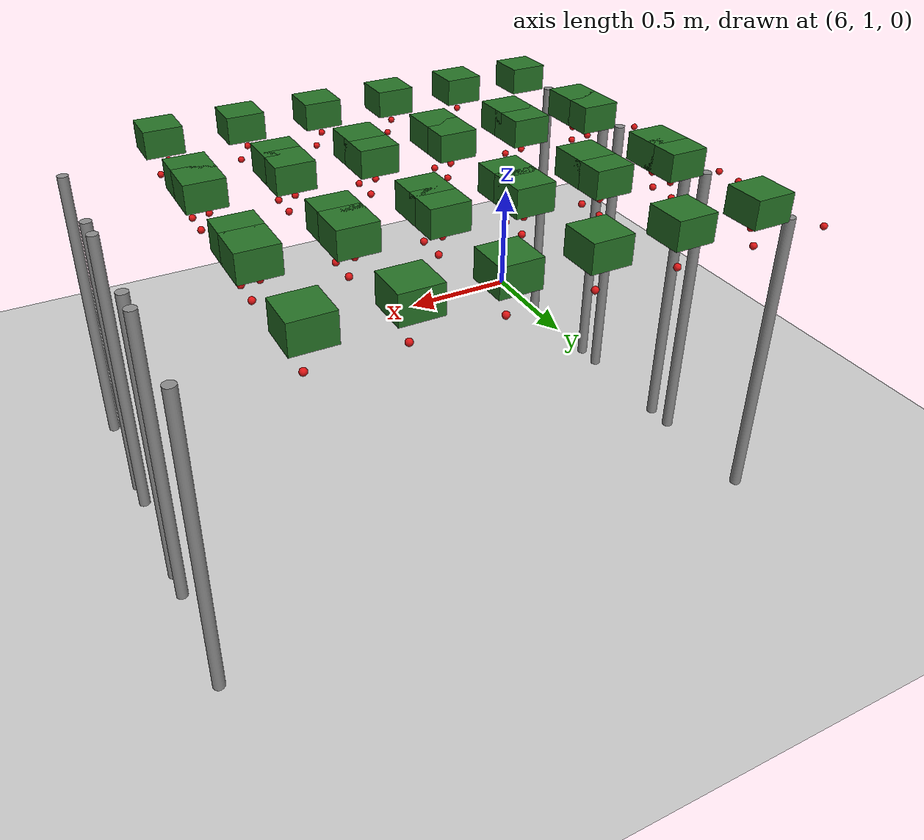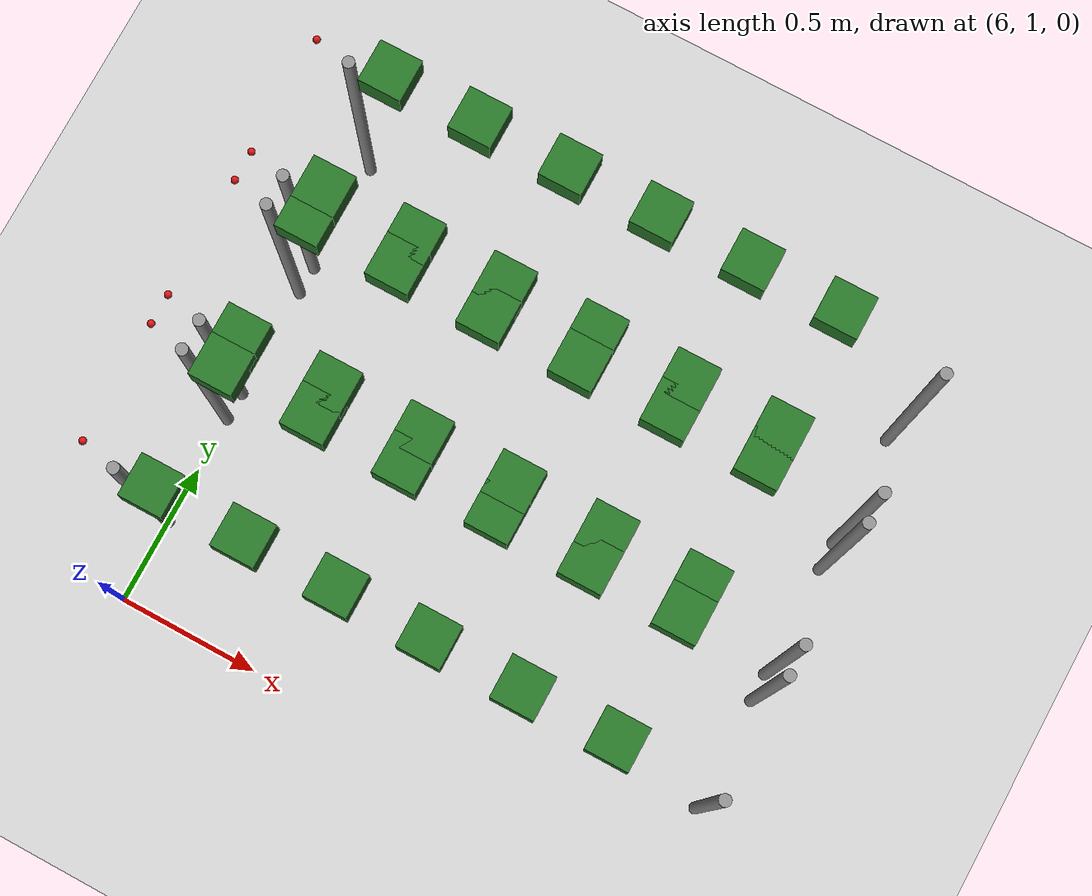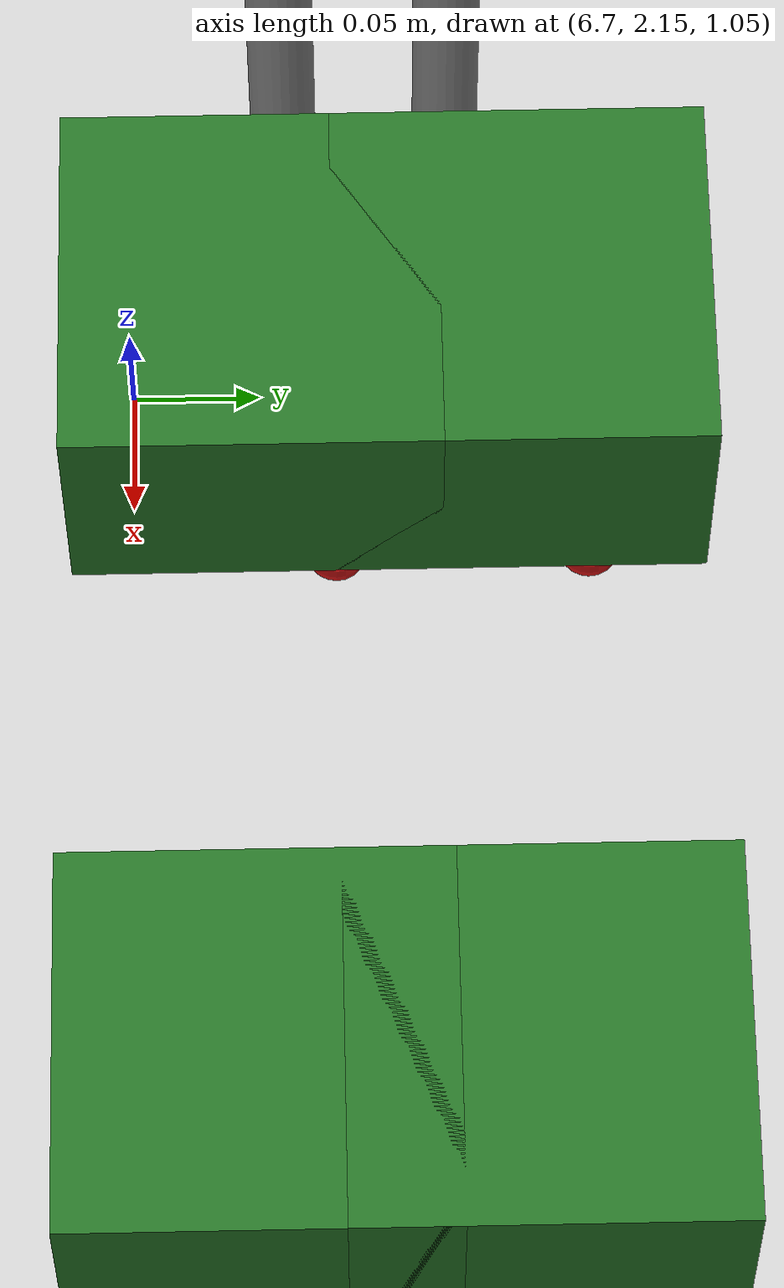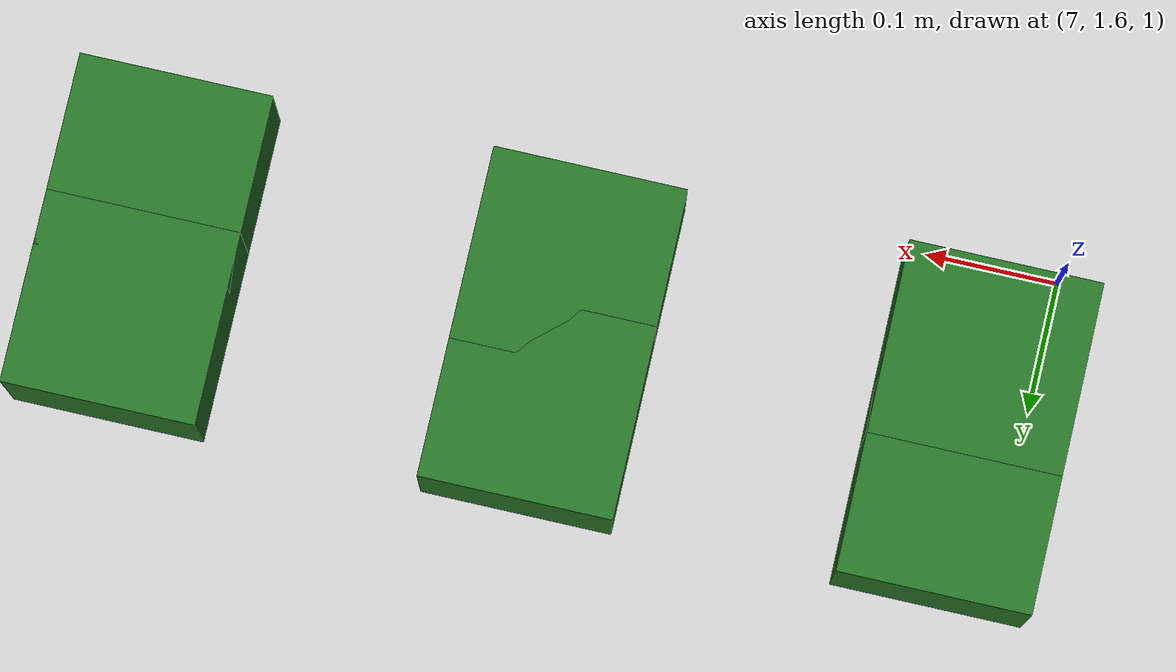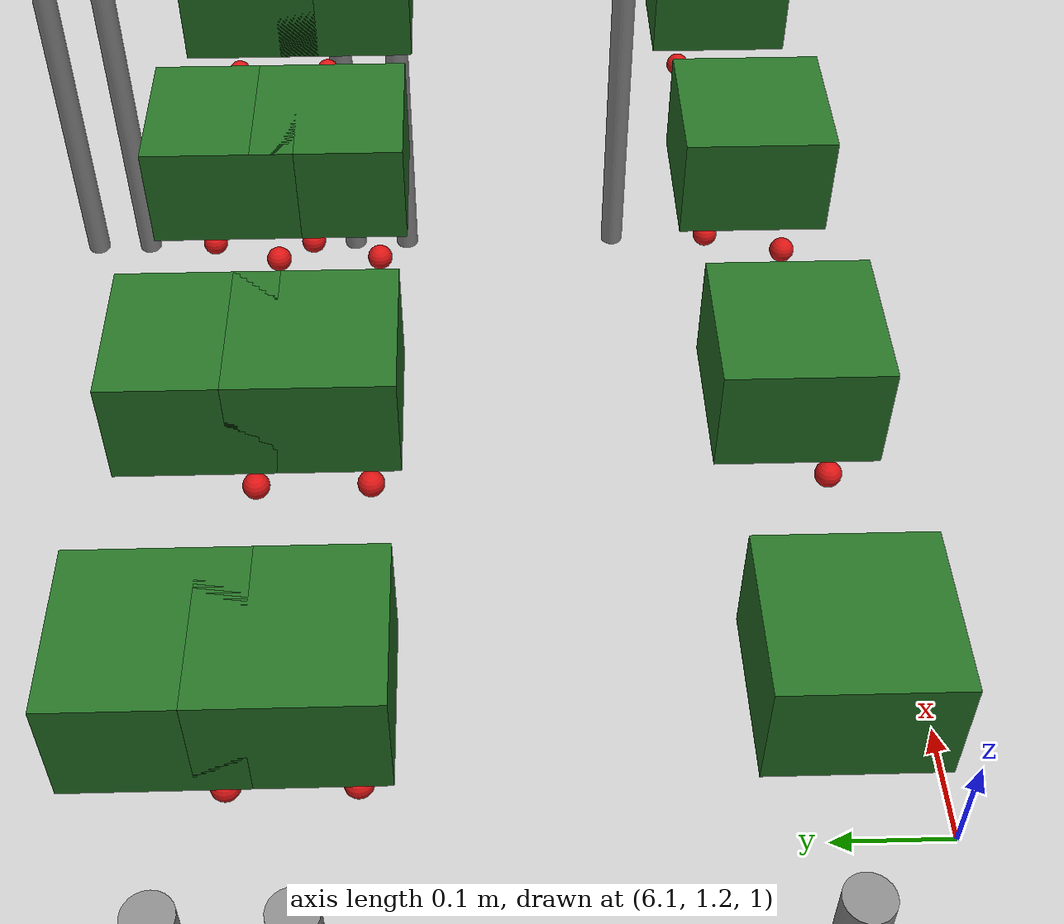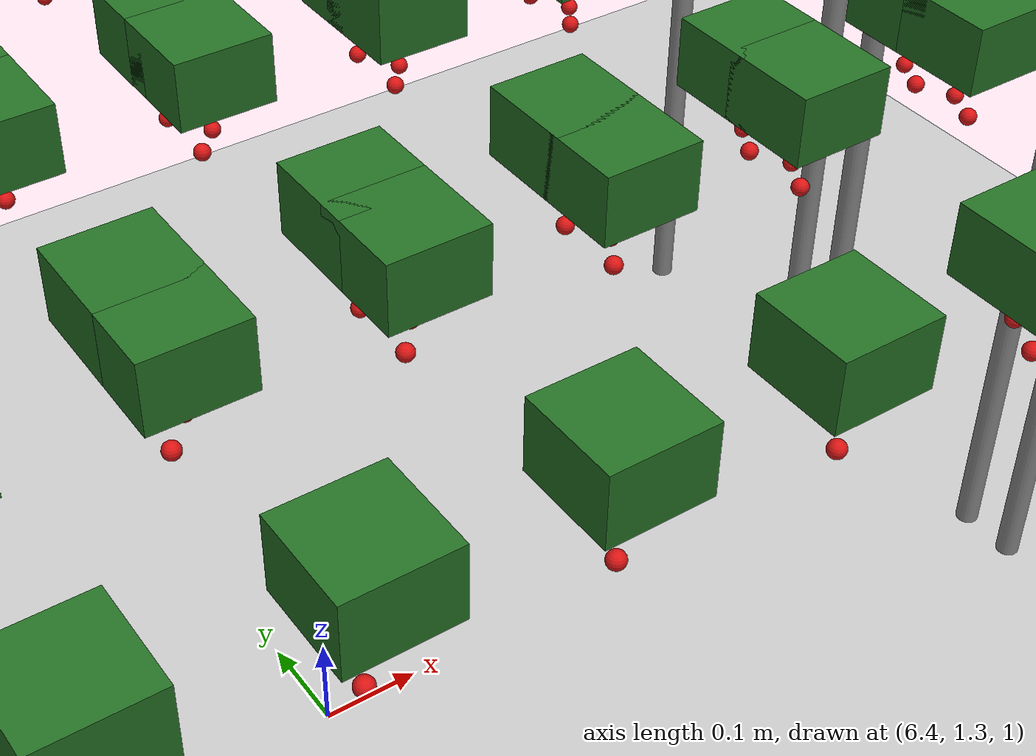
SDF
<sdf version="1.7">
 <world name="irish_polytunnel">
  <include><uri>model://sun</uri></include>
  <include><uri>model://ground_plane</uri></include>
  <model name="row3_L_post3">
   <static>true</static>
   <pose>6.000 1.700 0.550 0 0 0</pose>
   <link name="link">
    <collision name="collision">
     <geometry><cylinder><radius>0.02</radius><length>1.100</length></cylinder></geometry>
    </collision>
    <visual name="visual">
     <geometry><cylinder><radius>0.02</radius><length>1.100</length></cylinder></geometry>
     <material><ambient>0.5 0.5 0.5 1</ambient><diffuse>0.55 0.55 0.55 1</diffuse></material>
    </visual>
   </link>
  </model>
  <model name="row3_L_post4">
   <static>true</static>
   <pose>8.000 1.700 0.550 0 0 0</pose>
   <link name="link">
    <collision name="collision">
     <geometry><cylinder><radius>0.02</radius><length>1.100</length></cylinder></geometry>
    </collision>
    <visual name="visual">
     <geometry><cylinder><radius>0.02</radius><length>1.100</length></cylinder></geometry>
     <material><ambient>0.5 0.5 0.5 1</ambient><diffuse>0.55 0.55 0.55 1</diffuse></material>
    </visual>
   </link>
  </model>
  <model name="row3_L_plant19_berry_1">
   <static>true</static>
   <pose>5.870 1.730 1.050 0 0 0</pose>
   <link name="link">
    <visual name="visual">
     <geometry><sphere><radius>0.012</radius></sphere></geometry>
     <material><ambient>0.75 0.05 0.05 1</ambient><diffuse>0.85 0.08 0.08 1</diffuse></material>
    </visual>
   </link>
  </model>
  <model name="row3_L_plant20_foliage">
   <static>true</static>
   <pose>6.150 1.700 1.180 0 0 0</pose>
   <link name="link">
    <visual name="visual">
     <geometry><box><size>0.14 0.14 0.10</size></box></geometry>
     <material><ambient>0.10 0.35 0.10 1</ambient><diffuse>0.15 0.45 0.15 1</diffuse></material>
    </visual>
   </link>
  </model>
  <model name="row3_L_plant20_berry_0">
   <static>true</static>
   <pose>6.120 1.660 1.070 0 0 0</pose>
   <link name="link">
    <visual name="visual">
     <geometry><sphere><radius>0.012</radius></sphere></geometry>
     <material><ambient>0.75 0.05 0.05 1</ambient><diffuse>0.85 0.08 0.08 1</diffuse></material>
    </visual>
   </link>
  </model>
  <model name="row3_L_plant20_berry_1">
   <static>true</static>
   <pose>6.170 1.730 1.050 0 0 0</pose>
   <link name="link">
    <visual name="visual">
     <geometry><sphere><radius>0.012</radius></sphere></geometry>
     <material><ambient>0.75 0.05 0.05 1</ambient><diffuse>0.85 0.08 0.08 1</diffuse></material>
    </visual>
   </link>
  </model>
  <model name="row3_L_plant21_foliage">
   <static>true</static>
   <pose>6.450 1.700 1.180 0 0 0</pose>
   <link name="link">
    <visual name="visual">
     <geometry><box><size>0.14 0.14 0.10</size></box></geometry>
     <material><ambient>0.10 0.35 0.10 1</ambient><diffuse>0.15 0.45 0.15 1</diffuse></material>
    </visual>
   </link>
  </model>
  <model name="row3_L_plant21_berry_0">
   <static>true</static>
   <pose>6.420 1.660 1.070 0 0 0</pose>
   <link name="link">
    <visual name="visual">
     <geometry><sphere><radius>0.012</radius></sphere></geometry>
     <material><ambient>0.75 0.05 0.05 1</ambient><diffuse>0.85 0.08 0.08 1</diffuse></material>
    </visual>
   </link>
  </model>
  <model name="row3_L_plant21_berry_1">
   <static>true</static>
   <pose>6.470 1.730 1.050 0 0 0</pose>
   <link name="link">
    <visual name="visual">
     <geometry><sphere><radius>0.012</radius></sphere></geometry>
     <material><ambient>0.75 0.05 0.05 1</ambient><diffuse>0.85 0.08 0.08 1</diffuse></material>
    </visual>
   </link>
  </model>
  <model name="row3_L_plant22_foliage">
   <static>true</static>
   <pose>6.750 1.700 1.180 0 0 0</pose>
   <link name="link">
    <visual name="visual">
     <geometry><box><size>0.14 0.14 0.10</size></box></geometry>
     <material><ambient>0.10 0.35 0.10 1</ambient><diffuse>0.15 0.45 0.15 1</diffuse></material>
    </visual>
   </link>
  </model>
  <model name="row3_L_plant22_berry_0">
   <static>true</static>
   <pose>6.720 1.660 1.070 0 0 0</pose>
   <link name="link">
    <visual name="visual">
     <geometry><sphere><radius>0.012</radius></sphere></geometry>
     <material><ambient>0.75 0.05 0.05 1</ambient><diffuse>0.85 0.08 0.08 1</diffuse></material>
    </visual>
   </link>
  </model>
  <model name="row3_L_plant22_berry_1">
   <static>true</static>
   <pose>6.770 1.730 1.050 0 0 0</pose>
   <link name="link">
    <visual name="visual">
     <geometry><sphere><radius>0.012</radius></sphere></geometry>
     <material><ambient>0.75 0.05 0.05 1</ambient><diffuse>0.85 0.08 0.08 1</diffuse></material>
    </visual>
   </link>
  </model>
  <model name="row3_L_plant23_foliage">
   <static>true</static>
   <pose>7.050 1.700 1.180 0 0 0</pose>
   <link name="link">
    <visual name="visual">
     <geometry><box><size>0.14 0.14 0.10</size></box></geometry>
     <material><ambient>0.10 0.35 0.10 1</ambient><diffuse>0.15 0.45 0.15 1</diffuse></material>
    </visual>
   </link>
  </model>
  <model name="row3_L_plant23_berry_0">
   <static>true</static>
   <pose>7.020 1.660 1.070 0 0 0</pose>
   <link name="link">
    <visual name="visual">
     <geometry><sphere><radius>0.012</radius></sphere></geometry>
     <material><ambient>0.75 0.05 0.05 1</ambient><diffuse>0.85 0.08 0.08 1</diffuse></material>
    </visual>
   </link>
  </model>
  <model name="row3_L_plant23_berry_1">
   <static>true</static>
   <pose>7.070 1.730 1.050 0 0 0</pose>
   <link name="link">
    <visual name="visual">
     <geometry><sphere><radius>0.012</radius></sphere></geometry>
     <material><ambient>0.75 0.05 0.05 1</ambient><diffuse>0.85 0.08 0.08 1</diffuse></material>
    </visual>
   </link>
  </model>
  <model name="row3_L_plant24_foliage">
   <static>true</static>
   <pose>7.350 1.700 1.180 0 0 0</pose>
   <link name="link">
    <visual name="visual">
     <geometry><box><size>0.14 0.14 0.10</size></box></geometry>
     <material><ambient>0.10 0.35 0.10 1</ambient><diffuse>0.15 0.45 0.15 1</diffuse></material>
    </visual>
   </link>
  </model>
  <model name="row3_L_plant24_berry_0">
   <static>true</static>
   <pose>7.320 1.660 1.070 0 0 0</pose>
   <link name="link">
    <visual name="visual">
     <geometry><sphere><radius>0.012</radius></sphere></geometry>
     <material><ambient>0.75 0.05 0.05 1</ambient><diffuse>0.85 0.08 0.08 1</diffuse></material>
    </visual>
   </link>
  </model>
  <model name="row3_L_plant24_berry_1">
   <static>true</static>
   <pose>7.370 1.730 1.050 0 0 0</pose>
   <link name="link">
    <visual name="visual">
     <geometry><sphere><radius>0.012</radius></sphere></geometry>
     <material><ambient>0.75 0.05 0.05 1</ambient><diffuse>0.85 0.08 0.08 1</diffuse></material>
    </visual>
   </link>
  </model>
  <model name="row3_L_plant25_foliage">
   <static>true</static>
   <pose>7.650 1.700 1.180 0 0 0</pose>
   <link name="link">
    <visual name="visual">
     <geometry><box><size>0.14 0.14 0.10</size></box></geometry>
     <material><ambient>0.10 0.35 0.10 1</ambient><diffuse>0.15 0.45 0.15 1</diffuse></material>
    </visual>
   </link>
  </model>
  <model name="row3_L_plant25_berry_0">
   <static>true</static>
   <pose>7.620 1.660 1.070 0 0 0</pose>
   <link name="link">
    <visual name="visual">
     <geometry><sphere><radius>0.012</radius></sphere></geometry>
     <material><ambient>0.75 0.05 0.05 1</ambient><diffuse>0.85 0.08 0.08 1</diffuse></material>
    </visual>
   </link>
  </model>
  <model name="row3_L_plant25_berry_1">
   <static>true</static>
   <pose>7.670 1.730 1.050 0 0 0</pose>
   <link name="link">
    <visual name="visual">
     <geometry><sphere><radius>0.012</radius></sphere></geometry>
     <material><ambient>0.75 0.05 0.05 1</ambient><diffuse>0.85 0.08 0.08 1</diffuse></material>
    </visual>
   </link>
  </model>
  <model name="row3_R_post3">
   <static>true</static>
   <pose>6.000 1.300 0.550 0 0 0</pose>
   <link name="link">
    <collision name="collision">
     <geometry><cylinder><radius>0.02</radius><length>1.100</length></cylinder></geometry>
    </collision>
    <visual name="visual">
     <geometry><cylinder><radius>0.02</radius><length>1.100</length></cylinder></geometry>
     <material><ambient>0.5 0.5 0.5 1</ambient><diffuse>0.55 0.55 0.55 1</diffuse></material>
    </visual>
   </link>
  </model>
  <model name="row3_R_post4">
   <static>true</static>
   <pose>8.000 1.300 0.550 0 0 0</pose>
   <link name="link">
    <collision name="collision">
     <geometry><cylinder><radius>0.02</radius><length>1.100</length></cylinder></geometry>
    </collision>
    <visual name="visual">
     <geometry><cylinder><radius>0.02</radius><length>1.100</length></cylinder></geometry>
     <material><ambient>0.5 0.5 0.5 1</ambient><diffuse>0.55 0.55 0.55 1</diffuse></material>
    </visual>
   </link>
  </model>
  <model name="row3_R_plant19_berry_1">
   <static>true</static>
   <pose>5.870 1.330 1.050 0 0 0</pose>
   <link name="link">
    <visual name="visual">
     <geometry><sphere><radius>0.012</radius></sphere></geometry>
     <material><ambient>0.75 0.05 0.05 1</ambient><diffuse>0.85 0.08 0.08 1</diffuse></material>
    </visual>
   </link>
  </model>
  <model name="row3_R_plant20_foliage">
   <static>true</static>
   <pose>6.150 1.300 1.180 0 0 0</pose>
   <link name="link">
    <visual name="visual">
     <geometry><box><size>0.14 0.14 0.10</size></box></geometry>
     <material><ambient>0.10 0.35 0.10 1</ambient><diffuse>0.15 0.45 0.15 1</diffuse></material>
    </visual>
   </link>
  </model>
  <model name="row3_R_plant20_berry_1">
   <static>true</static>
   <pose>6.170 1.330 1.050 0 0 0</pose>
   <link name="link">
    <visual name="visual">
     <geometry><sphere><radius>0.012</radius></sphere></geometry>
     <material><ambient>0.75 0.05 0.05 1</ambient><diffuse>0.85 0.08 0.08 1</diffuse></material>
    </visual>
   </link>
  </model>
  <model name="row3_R_plant21_foliage">
   <static>true</static>
   <pose>6.450 1.300 1.180 0 0 0</pose>
   <link name="link">
    <visual name="visual">
     <geometry><box><size>0.14 0.14 0.10</size></box></geometry>
     <material><ambient>0.10 0.35 0.10 1</ambient><diffuse>0.15 0.45 0.15 1</diffuse></material>
    </visual>
   </link>
  </model>
  <model name="row3_R_plant21_berry_0">
   <static>true</static>
   <pose>6.420 1.260 1.070 0 0 0</pose>
   <link name="link">
    <visual name="visual">
     <geometry><sphere><radius>0.012</radius></sphere></geometry>
     <material><ambient>0.75 0.05 0.05 1</ambient><diffuse>0.85 0.08 0.08 1</diffuse></material>
    </visual>
   </link>
  </model>
  <model name="row3_R_plant21_berry_1">
   <static>true</static>
   <pose>6.470 1.330 1.050 0 0 0</pose>
   <link name="link">
    <visual name="visual">
     <geometry><sphere><radius>0.012</radius></sphere></geometry>
     <material><ambient>0.75 0.05 0.05 1</ambient><diffuse>0.85 0.08 0.08 1</diffuse></material>
    </visual>
   </link>
  </model>
  <model name="row3_R_plant22_foliage">
   <static>true</static>
   <pose>6.750 1.300 1.180 0 0 0</pose>
   <link name="link">
    <visual name="visual">
     <geometry><box><size>0.14 0.14 0.10</size></box></geometry>
     <material><ambient>0.10 0.35 0.10 1</ambient><diffuse>0.15 0.45 0.15 1</diffuse></material>
    </visual>
   </link>
  </model>
  <model name="row3_R_plant22_berry_0">
   <static>true</static>
   <pose>6.720 1.260 1.070 0 0 0</pose>
   <link name="link">
    <visual name="visual">
     <geometry><sphere><radius>0.012</radius></sphere></geometry>
     <material><ambient>0.75 0.05 0.05 1</ambient><diffuse>0.85 0.08 0.08 1</diffuse></material>
    </visual>
   </link>
  </model>
  <model name="row3_R_plant22_berry_1">
   <static>true</static>
   <pose>6.770 1.330 1.050 0 0 0</pose>
   <link name="link">
    <visual name="visual">
     <geometry><sphere><radius>0.012</radius></sphere></geometry>
     <material><ambient>0.75 0.05 0.05 1</ambient><diffuse>0.85 0.08 0.08 1</diffuse></material>
    </visual>
   </link>
  </model>
  <model name="row3_R_plant23_foliage">
   <static>true</static>
   <pose>7.050 1.300 1.180 0 0 0</pose>
   <link name="link">
    <visual name="visual">
     <geometry><box><size>0.14 0.14 0.10</size></box></geometry>
     <material><ambient>0.10 0.35 0.10 1</ambient><diffuse>0.15 0.45 0.15 1</diffuse></material>
    </visual>
   </link>
  </model>
  <model name="row3_R_plant23_berry_0">
   <static>true</static>
   <pose>7.020 1.260 1.070 0 0 0</pose>
   <link name="link">
    <visual name="visual">
     <geometry><sphere><radius>0.012</radius></sphere></geometry>
     <material><ambient>0.75 0.05 0.05 1</ambient><diffuse>0.85 0.08 0.08 1</diffuse></material>
    </visual>
   </link>
  </model>
  <model name="row3_R_plant23_berry_1">
   <static>true</static>
   <pose>7.070 1.330 1.050 0 0 0</pose>
   <link name="link">
    <visual name="visual">
     <geometry><sphere><radius>0.012</radius></sphere></geometry>
     <material><ambient>0.75 0.05 0.05 1</ambient><diffuse>0.85 0.08 0.08 1</diffuse></material>
    </visual>
   </link>
  </model>
  <model name="row3_R_plant24_foliage">
   <static>true</static>
   <pose>7.350 1.300 1.180 0 0 0</pose>
   <link name="link">
    <visual name="visual">
     <geometry><box><size>0.14 0.14 0.10</size></box></geometry>
     <material><ambient>0.10 0.35 0.10 1</ambient><diffuse>0.15 0.45 0.15 1</diffuse></material>
    </visual>
   </link>
  </model>
  <model name="row3_R_plant24_berry_0">
   <static>true</static>
   <pose>7.320 1.260 1.070 0 0 0</pose>
   <link name="link">
    <visual name="visual">
     <geometry><sphere><radius>0.012</radius></sphere></geometry>
     <material><ambient>0.75 0.05 0.05 1</ambient><diffuse>0.85 0.08 0.08 1</diffuse></material>
    </visual>
   </link>
  </model>
  <model name="row3_R_plant24_berry_1">
   <static>true</static>
   <pose>7.370 1.330 1.050 0 0 0</pose>
   <link name="link">
    <visual name="visual">
     <geometry><sphere><radius>0.012</radius></sphere></geometry>
     <material><ambient>0.75 0.05 0.05 1</ambient><diffuse>0.85 0.08 0.08 1</diffuse></material>
    </visual>
   </link>
  </model>
  <model name="row3_R_plant25_foliage">
   <static>true</static>
   <pose>7.650 1.300 1.180 0 0 0</pose>
   <link name="link">
    <visual name="visual">
     <geometry><box><size>0.14 0.14 0.10</size></box></geometry>
     <material><ambient>0.10 0.35 0.10 1</ambient><diffuse>0.15 0.45 0.15 1</diffuse></material>
    </visual>
   </link>
  </model>
  <model name="row3_R_plant25_berry_0">
   <static>true</static>
   <pose>7.620 1.260 1.070 0 0 0</pose>
   <link name="link">
    <visual name="visual">
     <geometry><sphere><radius>0.012</radius></sphere></geometry>
     <material><ambient>0.75 0.05 0.05 1</ambient><diffuse>0.85 0.08 0.08 1</diffuse></material>
    </visual>
   </link>
  </model>
  <model name="row3_R_plant25_berry_1">
   <static>true</static>
   <pose>7.670 1.330 1.050 0 0 0</pose>
   <link name="link">
    <visual name="visual">
     <geometry><sphere><radius>0.012</radius></sphere></geometry>
     <material><ambient>0.75 0.05 0.05 1</ambient><diffuse>0.85 0.08 0.08 1</diffuse></material>
    </visual>
   </link>
  </model>
  <model name="row4_L_post3">
   <static>true</static>
   <pose>6.000 2.200 0.550 0 0 0</pose>
   <link name="link">
    <collision name="collision">
     <geometry><cylinder><radius>0.02</radius><length>1.100</length></cylinder></geometry>
    </collision>
    <visual name="visual">
     <geometry><cylinder><radius>0.02</radius><length>1.100</length></cylinder></geometry>
     <material><ambient>0.5 0.5 0.5 1</ambient><diffuse>0.55 0.55 0.55 1</diffuse></material>
    </visual>
   </link>
  </model>
  <model name="row4_L_post4">
   <static>true</static>
   <pose>8.000 2.200 0.550 0 0 0</pose>
   <link name="link">
    <collision name="collision">
     <geometry><cylinder><radius>0.02</radius><length>1.100</length></cylinder></geometry>
    </collision>
    <visual name="visual">
     <geometry><cylinder><radius>0.02</radius><length>1.100</length></cylinder></geometry>
     <material><ambient>0.5 0.5 0.5 1</ambient><diffuse>0.55 0.55 0.55 1</diffuse></material>
    </visual>
   </link>
  </model>
  <model name="row4_L_plant19_berry_1">
   <static>true</static>
   <pose>5.870 2.230 1.050 0 0 0</pose>
   <link name="link">
    <visual name="visual">
     <geometry><sphere><radius>0.012</radius></sphere></geometry>
     <material><ambient>0.75 0.05 0.05 1</ambient><diffuse>0.85 0.08 0.08 1</diffuse></material>
    </visual>
   </link>
  </model>
  <model name="row4_L_plant20_foliage">
   <static>true</static>
   <pose>6.150 2.200 1.180 0 0 0</pose>
   <link name="link">
    <visual name="visual">
     <geometry><box><size>0.14 0.14 0.10</size></box></geometry>
     <material><ambient>0.10 0.35 0.10 1</ambient><diffuse>0.15 0.45 0.15 1</diffuse></material>
    </visual>
   </link>
  </model>
  <model name="row4_L_plant20_berry_0">
   <static>true</static>
   <pose>6.120 2.160 1.070 0 0 0</pose>
   <link name="link">
    <visual name="visual">
     <geometry><sphere><radius>0.012</radius></sphere></geometry>
     <material><ambient>0.75 0.05 0.05 1</ambient><diffuse>0.85 0.08 0.08 1</diffuse></material>
    </visual>
   </link>
  </model>
  <model name="row4_L_plant20_berry_1">
   <static>true</static>
   <pose>6.170 2.230 1.050 0 0 0</pose>
   <link name="link">
    <visual name="visual">
     <geometry><sphere><radius>0.012</radius></sphere></geometry>
     <material><ambient>0.75 0.05 0.05 1</ambient><diffuse>0.85 0.08 0.08 1</diffuse></material>
    </visual>
   </link>
  </model>
  <model name="row4_L_plant21_foliage">
   <static>true</static>
   <pose>6.450 2.200 1.180 0 0 0</pose>
   <link name="link">
    <visual name="visual">
     <geometry><box><size>0.14 0.14 0.10</size></box></geometry>
     <material><ambient>0.10 0.35 0.10 1</ambient><diffuse>0.15 0.45 0.15 1</diffuse></material>
    </visual>
   </link>
  </model>
  <model name="row4_L_plant21_berry_0">
   <static>true</static>
   <pose>6.420 2.160 1.070 0 0 0</pose>
   <link name="link">
    <visual name="visual">
     <geometry><sphere><radius>0.012</radius></sphere></geometry>
     <material><ambient>0.75 0.05 0.05 1</ambient><diffuse>0.85 0.08 0.08 1</diffuse></material>
    </visual>
   </link>
  </model>
  <model name="row4_L_plant21_berry_1">
   <static>true</static>
   <pose>6.470 2.230 1.050 0 0 0</pose>
   <link name="link">
    <visual name="visual">
     <geometry><sphere><radius>0.012</radius></sphere></geometry>
     <material><ambient>0.75 0.05 0.05 1</ambient><diffuse>0.85 0.08 0.08 1</diffuse></material>
    </visual>
   </link>
  </model>
  <model name="row4_L_plant22_foliage">
   <static>true</static>
   <pose>6.750 2.200 1.180 0 0 0</pose>
   <link name="link">
    <visual name="visual">
     <geometry><box><size>0.14 0.14 0.10</size></box></geometry>
     <material><ambient>0.10 0.35 0.10 1</ambient><diffuse>0.15 0.45 0.15 1</diffuse></material>
    </visual>
   </link>
  </model>
  <model name="row4_L_plant22_berry_0">
   <static>true</static>
   <pose>6.720 2.160 1.070 0 0 0</pose>
   <link name="link">
    <visual name="visual">
     <geometry><sphere><radius>0.012</radius></sphere></geometry>
     <material><ambient>0.75 0.05 0.05 1</ambient><diffuse>0.85 0.08 0.08 1</diffuse></material>
    </visual>
   </link>
  </model>
  <model name="row4_L_plant22_berry_1">
   <static>true</static>
   <pose>6.770 2.230 1.050 0 0 0</pose>
   <link name="link">
    <visual name="visual">
     <geometry><sphere><radius>0.012</radius></sphere></geometry>
     <material><ambient>0.75 0.05 0.05 1</ambient><diffuse>0.85 0.08 0.08 1</diffuse></material>
    </visual>
   </link>
  </model>
  <model name="row4_L_plant23_foliage">
   <static>true</static>
   <pose>7.050 2.200 1.180 0 0 0</pose>
   <link name="link">
    <visual name="visual">
     <geometry><box><size>0.14 0.14 0.10</size></box></geometry>
     <material><ambient>0.10 0.35 0.10 1</ambient><diffuse>0.15 0.45 0.15 1</diffuse></material>
    </visual>
   </link>
  </model>
  <model name="row4_L_plant23_berry_0">
   <static>true</static>
   <pose>7.020 2.160 1.070 0 0 0</pose>
   <link name="link">
    <visual name="visual">
     <geometry><sphere><radius>0.012</radius></sphere></geometry>
     <material><ambient>0.75 0.05 0.05 1</ambient><diffuse>0.85 0.08 0.08 1</diffuse></material>
    </visual>
   </link>
  </model>
  <model name="row4_L_plant23_berry_1">
   <static>true</static>
   <pose>7.070 2.230 1.050 0 0 0</pose>
   <link name="link">
    <visual name="visual">
     <geometry><sphere><radius>0.012</radius></sphere></geometry>
     <material><ambient>0.75 0.05 0.05 1</ambient><diffuse>0.85 0.08 0.08 1</diffuse></material>
    </visual>
   </link>
  </model>
  <model name="row4_L_plant24_foliage">
   <static>true</static>
   <pose>7.350 2.200 1.180 0 0 0</pose>
   <link name="link">
    <visual name="visual">
     <geometry><box><size>0.14 0.14 0.10</size></box></geometry>
     <material><ambient>0.10 0.35 0.10 1</ambient><diffuse>0.15 0.45 0.15 1</diffuse></material>
    </visual>
   </link>
  </model>
  <model name="row4_L_plant24_berry_0">
   <static>true</static>
   <pose>7.320 2.160 1.070 0 0 0</pose>
   <link name="link">
    <visual name="visual">
     <geometry><sphere><radius>0.012</radius></sphere></geometry>
     <material><ambient>0.75 0.05 0.05 1</ambient><diffuse>0.85 0.08 0.08 1</diffuse></material>
    </visual>
   </link>
  </model>
  <model name="row4_L_plant24_berry_1">
   <static>true</static>
   <pose>7.370 2.230 1.050 0 0 0</pose>
   <link name="link">
    <visual name="visual">
     <geometry><sphere><radius>0.012</radius></sphere></geometry>
     <material><ambient>0.75 0.05 0.05 1</ambient><diffuse>0.85 0.08 0.08 1</diffuse></material>
    </visual>
   </link>
  </model>
  <model name="row4_L_plant25_foliage">
   <static>true</static>
   <pose>7.650 2.200 1.180 0 0 0</pose>
   <link name="link">
    <visual name="visual">
     <geometry><box><size>0.14 0.14 0.10</size></box></geometry>
     <material><ambient>0.10 0.35 0.10 1</ambient><diffuse>0.15 0.45 0.15 1</diffuse></material>
    </visual>
   </link>
  </model>
  <model name="row4_L_plant25_berry_0">
   <static>true</static>
   <pose>7.620 2.160 1.070 0 0 0</pose>
   <link name="link">
    <visual name="visual">
     <geometry><sphere><radius>0.012</radius></sphere></geometry>
     <material><ambient>0.75 0.05 0.05 1</ambient><diffuse>0.85 0.08 0.08 1</diffuse></material>
    </visual>
   </link>
  </model>
  <model name="row4_L_plant25_berry_1">
   <static>true</static>
   <pose>7.670 2.230 1.050 0 0 0</pose>
   <link name="link">
    <visual name="visual">
     <geometry><sphere><radius>0.012</radius></sphere></geometry>
     <material><ambient>0.75 0.05 0.05 1</ambient><diffuse>0.85 0.08 0.08 1</diffuse></material>
    </visual>
   </link>
  </model>
  <model name="row4_R_post3">
   <static>true</static>
   <pose>6.000 1.800 0.550 0 0 0</pose>
   <link name="link">
    <collision name="collision">
     <geometry><cylinder><radius>0.02</radius><length>1.100</length></cylinder></geometry>
    </collision>
    <visual name="visual">
     <geometry><cylinder><radius>0.02</radius><length>1.100</length></cylinder></geometry>
     <material><ambient>0.5 0.5 0.5 1</ambient><diffuse>0.55 0.55 0.55 1</diffuse></material>
    </visual>
   </link>
  </model>
  <model name="row4_R_post4">
   <static>true</static>
   <pose>8.000 1.800 0.550 0 0 0</pose>
   <link name="link">
    <collision name="collision">
     <geometry><cylinder><radius>0.02</radius><length>1.100</length></cylinder></geometry>
    </collision>
    <visual name="visual">
     <geometry><cylinder><radius>0.02</radius><length>1.100</length></cylinder></geometry>
     <material><ambient>0.5 0.5 0.5 1</ambient><diffuse>0.55 0.55 0.55 1</diffuse></material>
    </visual>
   </link>
  </model>
  <model name="row4_R_plant19_berry_1">
   <static>true</static>
   <pose>5.870 1.830 1.050 0 0 0</pose>
   <link name="link">
    <visual name="visual">
     <geometry><sphere><radius>0.012</radius></sphere></geometry>
     <material><ambient>0.75 0.05 0.05 1</ambient><diffuse>0.85 0.08 0.08 1</diffuse></material>
    </visual>
   </link>
  </model>
  <model name="row4_R_plant20_foliage">
   <static>true</static>
   <pose>6.150 1.800 1.180 0 0 0</pose>
   <link name="link">
    <visual name="visual">
     <geometry><box><size>0.14 0.14 0.10</size></box></geometry>
     <material><ambient>0.10 0.35 0.10 1</ambient><diffuse>0.15 0.45 0.15 1</diffuse></material>
    </visual>
   </link>
  </model>
  <model name="row4_R_plant20_berry_0">
   <static>true</static>
   <pose>6.120 1.760 1.070 0 0 0</pose>
   <link name="link">
    <visual name="visual">
     <geometry><sphere><radius>0.012</radius></sphere></geometry>
     <material><ambient>0.75 0.05 0.05 1</ambient><diffuse>0.85 0.08 0.08 1</diffuse></material>
    </visual>
   </link>
  </model>
  <model name="row4_R_plant20_berry_1">
   <static>true</static>
   <pose>6.170 1.830 1.050 0 0 0</pose>
   <link name="link">
    <visual name="visual">
     <geometry><sphere><radius>0.012</radius></sphere></geometry>
     <material><ambient>0.75 0.05 0.05 1</ambient><diffuse>0.85 0.08 0.08 1</diffuse></material>
    </visual>
   </link>
  </model>
  <model name="row4_R_plant21_foliage">
   <static>true</static>
   <pose>6.450 1.800 1.180 0 0 0</pose>
   <link name="link">
    <visual name="visual">
     <geometry><box><size>0.14 0.14 0.10</size></box></geometry>
     <material><ambient>0.10 0.35 0.10 1</ambient><diffuse>0.15 0.45 0.15 1</diffuse></material>
    </visual>
   </link>
  </model>
  <model name="row4_R_plant21_berry_0">
   <static>true</static>
   <pose>6.420 1.760 1.070 0 0 0</pose>
   <link name="link">
    <visual name="visual">
     <geometry><sphere><radius>0.012</radius></sphere></geometry>
     <material><ambient>0.75 0.05 0.05 1</ambient><diffuse>0.85 0.08 0.08 1</diffuse></material>
    </visual>
   </link>
  </model>
  <model name="row4_R_plant21_berry_1">
   <static>true</static>
   <pose>6.470 1.830 1.050 0 0 0</pose>
   <link name="link">
    <visual name="visual">
     <geometry><sphere><radius>0.012</radius></sphere></geometry>
     <material><ambient>0.75 0.05 0.05 1</ambient><diffuse>0.85 0.08 0.08 1</diffuse></material>
    </visual>
   </link>
  </model>
  <model name="row4_R_plant22_foliage">
   <static>true</static>
   <pose>6.750 1.800 1.180 0 0 0</pose>
   <link name="link">
    <visual name="visual">
     <geometry><box><size>0.14 0.14 0.10</size></box></geometry>
     <material><ambient>0.10 0.35 0.10 1</ambient><diffuse>0.15 0.45 0.15 1</diffuse></material>
    </visual>
   </link>
  </model>
  <model name="row4_R_plant22_berry_0">
   <static>true</static>
   <pose>6.720 1.760 1.070 0 0 0</pose>
   <link name="link">
    <visual name="visual">
     <geometry><sphere><radius>0.012</radius></sphere></geometry>
     <material><ambient>0.75 0.05 0.05 1</ambient><diffuse>0.85 0.08 0.08 1</diffuse></material>
    </visual>
   </link>
  </model>
  <model name="row4_R_plant22_berry_1">
   <static>true</static>
   <pose>6.770 1.830 1.050 0 0 0</pose>
   <link name="link">
    <visual name="visual">
     <geometry><sphere><radius>0.012</radius></sphere></geometry>
     <material><ambient>0.75 0.05 0.05 1</ambient><diffuse>0.85 0.08 0.08 1</diffuse></material>
    </visual>
   </link>
  </model>
  <model name="row4_R_plant23_foliage">
   <static>true</static>
   <pose>7.050 1.800 1.180 0 0 0</pose>
   <link name="link">
    <visual name="visual">
     <geometry><box><size>0.14 0.14 0.10</size></box></geometry>
     <material><ambient>0.10 0.35 0.10 1</ambient><diffuse>0.15 0.45 0.15 1</diffuse></material>
    </visual>
   </link>
  </model>
  <model name="row4_R_plant23_berry_0">
   <static>true</static>
   <pose>7.020 1.760 1.070 0 0 0</pose>
   <link name="link">
    <visual name="visual">
     <geometry><sphere><radius>0.012</radius></sphere></geometry>
     <material><ambient>0.75 0.05 0.05 1</ambient><diffuse>0.85 0.08 0.08 1</diffuse></material>
    </visual>
   </link>
  </model>
  <model name="row4_R_plant23_berry_1">
   <static>true</static>
   <pose>7.070 1.830 1.050 0 0 0</pose>
   <link name="link">
    <visual name="visual">
     <geometry><sphere><radius>0.012</radius></sphere></geometry>
     <material><ambient>0.75 0.05 0.05 1</ambient><diffuse>0.85 0.08 0.08 1</diffuse></material>
    </visual>
   </link>
  </model>
  <model name="row4_R_plant24_foliage">
   <static>true</static>
   <pose>7.350 1.800 1.180 0 0 0</pose>
   <link name="link">
    <visual name="visual">
     <geometry><box><size>0.14 0.14 0.10</size></box></geometry>
     <material><ambient>0.10 0.35 0.10 1</ambient><diffuse>0.15 0.45 0.15 1</diffuse></material>
    </visual>
   </link>
  </model>
  <model name="row4_R_plant24_berry_0">
   <static>true</static>
   <pose>7.320 1.760 1.070 0 0 0</pose>
   <link name="link">
    <visual name="visual">
     <geometry><sphere><radius>0.012</radius></sphere></geometry>
     <material><ambient>0.75 0.05 0.05 1</ambient><diffuse>0.85 0.08 0.08 1</diffuse></material>
    </visual>
   </link>
  </model>
  <model name="row4_R_plant24_berry_1">
   <static>true</static>
   <pose>7.370 1.830 1.050 0 0 0</pose>
   <link name="link">
    <visual name="visual">
     <geometry><sphere><radius>0.012</radius></sphere></geometry>
     <material><ambient>0.75 0.05 0.05 1</ambient><diffuse>0.85 0.08 0.08 1</diffuse></material>
    </visual>
   </link>
  </model>
  <model name="row4_R_plant25_foliage">
   <static>true</static>
   <pose>7.650 1.800 1.180 0 0 0</pose>
   <link name="link">
    <visual name="visual">
     <geometry><box><size>0.14 0.14 0.10</size></box></geometry>
     <material><ambient>0.10 0.35 0.10 1</ambient><diffuse>0.15 0.45 0.15 1</diffuse></material>
    </visual>
   </link>
  </model>
  <model name="row4_R_plant25_berry_0">
   <static>true</static>
   <pose>7.620 1.760 1.070 0 0 0</pose>
   <link name="link">
    <visual name="visual">
     <geometry><sphere><radius>0.012</radius></sphere></geometry>
     <material><ambient>0.75 0.05 0.05 1</ambient><diffuse>0.85 0.08 0.08 1</diffuse></material>
    </visual>
   </link>
  </model>
  <model name="row4_R_plant25_berry_1">
   <static>true</static>
   <pose>7.670 1.830 1.050 0 0 0</pose>
   <link name="link">
    <visual name="visual">
     <geometry><sphere><radius>0.012</radius></sphere></geometry>
     <material><ambient>0.75 0.05 0.05 1</ambient><diffuse>0.85 0.08 0.08 1</diffuse></material>
    </visual>
   </link>
  </model>
  <model name="row5_L_post3">
   <static>true</static>
   <pose>6.000 2.700 0.550 0 0 0</pose>
   <link name="link">
    <collision name="collision">
     <geometry><cylinder><radius>0.02</radius><length>1.100</length></cylinder></geometry>
    </collision>
    <visual name="visual">
     <geometry><cylinder><radius>0.02</radius><length>1.100</length></cylinder></geometry>
     <material><ambient>0.5 0.5 0.5 1</ambient><diffuse>0.55 0.55 0.55 1</diffuse></material>
    </visual>
   </link>
  </model>
  <model name="row5_L_post4">
   <static>true</static>
   <pose>8.000 2.700 0.550 0 0 0</pose>
   <link name="link">
    <collision name="collision">
     <geometry><cylinder><radius>0.02</radius><length>1.100</length></cylinder></geometry>
    </collision>
    <visual name="visual">
     <geometry><cylinder><radius>0.02</radius><length>1.100</length></cylinder></geometry>
     <material><ambient>0.5 0.5 0.5 1</ambient><diffuse>0.55 0.55 0.55 1</diffuse></material>
    </visual>
   </link>
  </model>
  <model name="row5_L_plant19_berry_1">
   <static>true</static>
   <pose>5.870 2.730 1.050 0 0 0</pose>
   <link name="link">
    <visual name="visual">
     <geometry><sphere><radius>0.012</radius></sphere></geometry>
     <material><ambient>0.75 0.05 0.05 1</ambient><diffuse>0.85 0.08 0.08 1</diffuse></material>
    </visual>
   </link>
  </model>
  <model name="row5_L_plant20_foliage">
   <static>true</static>
   <pose>6.150 2.700 1.180 0 0 0</pose>
   <link name="link">
    <visual name="visual">
     <geometry><box><size>0.14 0.14 0.10</size></box></geometry>
     <material><ambient>0.10 0.35 0.10 1</ambient><diffuse>0.15 0.45 0.15 1</diffuse></material>
    </visual>
   </link>
  </model>
  <model name="row5_L_plant20_berry_0">
   <static>true</static>
   <pose>6.120 2.660 1.070 0 0 0</pose>
   <link name="link">
    <visual name="visual">
     <geometry><sphere><radius>0.012</radius></sphere></geometry>
     <material><ambient>0.75 0.05 0.05 1</ambient><diffuse>0.85 0.08 0.08 1</diffuse></material>
    </visual>
   </link>
  </model>
  <model name="row5_L_plant20_berry_1">
   <static>true</static>
   <pose>6.170 2.730 1.050 0 0 0</pose>
   <link name="link">
    <visual name="visual">
     <geometry><sphere><radius>0.012</radius></sphere></geometry>
     <material><ambient>0.75 0.05 0.05 1</ambient><diffuse>0.85 0.08 0.08 1</diffuse></material>
    </visual>
   </link>
  </model>
  <model name="row5_L_plant21_foliage">
   <static>true</static>
   <pose>6.450 2.700 1.180 0 0 0</pose>
   <link name="link">
    <visual name="visual">
     <geometry><box><size>0.14 0.14 0.10</size></box></geometry>
     <material><ambient>0.10 0.35 0.10 1</ambient><diffuse>0.15 0.45 0.15 1</diffuse></material>
    </visual>
   </link>
  </model>
  <model name="row5_L_plant21_berry_0">
   <static>true</static>
   <pose>6.420 2.660 1.070 0 0 0</pose>
   <link name="link">
    <visual name="visual">
     <geometry><sphere><radius>0.012</radius></sphere></geometry>
     <material><ambient>0.75 0.05 0.05 1</ambient><diffuse>0.85 0.08 0.08 1</diffuse></material>
    </visual>
   </link>
  </model>
  <model name="row5_L_plant21_berry_1">
   <static>true</static>
   <pose>6.470 2.730 1.050 0 0 0</pose>
   <link name="link">
    <visual name="visual">
     <geometry><sphere><radius>0.012</radius></sphere></geometry>
     <material><ambient>0.75 0.05 0.05 1</ambient><diffuse>0.85 0.08 0.08 1</diffuse></material>
    </visual>
   </link>
  </model>
  <model name="row5_L_plant22_foliage">
   <static>true</static>
   <pose>6.750 2.700 1.180 0 0 0</pose>
   <link name="link">
    <visual name="visual">
     <geometry><box><size>0.14 0.14 0.10</size></box></geometry>
     <material><ambient>0.10 0.35 0.10 1</ambient><diffuse>0.15 0.45 0.15 1</diffuse></material>
    </visual>
   </link>
  </model>
  <model name="row5_L_plant22_berry_0">
   <static>true</static>
   <pose>6.720 2.660 1.070 0 0 0</pose>
   <link name="link">
    <visual name="visual">
     <geometry><sphere><radius>0.012</radius></sphere></geometry>
     <material><ambient>0.75 0.05 0.05 1</ambient><diffuse>0.85 0.08 0.08 1</diffuse></material>
    </visual>
   </link>
  </model>
  <model name="row5_L_plant22_berry_1">
   <static>true</static>
   <pose>6.770 2.730 1.050 0 0 0</pose>
   <link name="link">
    <visual name="visual">
     <geometry><sphere><radius>0.012</radius></sphere></geometry>
     <material><ambient>0.75 0.05 0.05 1</ambient><diffuse>0.85 0.08 0.08 1</diffuse></material>
    </visual>
   </link>
  </model>
  <model name="row5_L_plant23_foliage">
   <static>true</static>
   <pose>7.050 2.700 1.180 0 0 0</pose>
   <link name="link">
    <visual name="visual">
     <geometry><box><size>0.14 0.14 0.10</size></box></geometry>
     <material><ambient>0.10 0.35 0.10 1</ambient><diffuse>0.15 0.45 0.15 1</diffuse></material>
    </visual>
   </link>
  </model>
  <model name="row5_L_plant23_berry_0">
   <static>true</static>
   <pose>7.020 2.660 1.070 0 0 0</pose>
   <link name="link">
    <visual name="visual">
     <geometry><sphere><radius>0.012</radius></sphere></geometry>
     <material><ambient>0.75 0.05 0.05 1</ambient><diffuse>0.85 0.08 0.08 1</diffuse></material>
    </visual>
   </link>
  </model>
  <model name="row5_L_plant23_berry_1">
   <static>true</static>
   <pose>7.070 2.730 1.050 0 0 0</pose>
   <link name="link">
    <visual name="visual">
     <geometry><sphere><radius>0.012</radius></sphere></geometry>
     <material><ambient>0.75 0.05 0.05 1</ambient><diffuse>0.85 0.08 0.08 1</diffuse></material>
    </visual>
   </link>
  </model>
  <model name="row5_L_plant24_foliage">
   <static>true</static>
   <pose>7.350 2.700 1.180 0 0 0</pose>
   <link name="link">
    <visual name="visual">
     <geometry><box><size>0.14 0.14 0.10</size></box></geometry>
     <material><ambient>0.10 0.35 0.10 1</ambient><diffuse>0.15 0.45 0.15 1</diffuse></material>
    </visual>
   </link>
  </model>
  <model name="row5_L_plant24_berry_0">
   <static>true</static>
   <pose>7.320 2.660 1.070 0 0 0</pose>
   <link name="link">
    <visual name="visual">
     <geometry><sphere><radius>0.012</radius></sphere></geometry>
     <material><ambient>0.75 0.05 0.05 1</ambient><diffuse>0.85 0.08 0.08 1</diffuse></material>
    </visual>
   </link>
  </model>
  <model name="row5_L_plant24_berry_1">
   <static>true</static>
   <pose>7.370 2.730 1.050 0 0 0</pose>
   <link name="link">
    <visual name="visual">
     <geometry><sphere><radius>0.012</radius></sphere></geometry>
     <material><ambient>0.75 0.05 0.05 1</ambient><diffuse>0.85 0.08 0.08 1</diffuse></material>
    </visual>
   </link>
  </model>
  <model name="row5_L_plant25_foliage">
   <static>true</static>
   <pose>7.650 2.700 1.180 0 0 0</pose>
   <link name="link">
    <visual name="visual">
     <geometry><box><size>0.14 0.14 0.10</size></box></geometry>
     <material><ambient>0.10 0.35 0.10 1</ambient><diffuse>0.15 0.45 0.15 1</diffuse></material>
    </visual>
   </link>
  </model>
  <model name="row5_L_plant25_berry_0">
   <static>true</static>
   <pose>7.620 2.660 1.070 0 0 0</pose>
   <link name="link">
    <visual name="visual">
     <geometry><sphere><radius>0.012</radius></sphere></geometry>
     <material><ambient>0.75 0.05 0.05 1</ambient><diffuse>0.85 0.08 0.08 1</diffuse></material>
    </visual>
   </link>
  </model>
  <model name="row5_L_plant25_berry_1">
   <static>true</static>
   <pose>7.670 2.730 1.050 0 0 0</pose>
   <link name="link">
    <visual name="visual">
     <geometry><sphere><radius>0.012</radius></sphere></geometry>
     <material><ambient>0.75 0.05 0.05 1</ambient><diffuse>0.85 0.08 0.08 1</diffuse></material>
    </visual>
   </link>
  </model>
  <model name="row5_R_post3">
   <static>true</static>
   <pose>6.000 2.300 0.550 0 0 0</pose>
   <link name="link">
    <collision name="collision">
     <geometry><cylinder><radius>0.02</radius><length>1.100</length></cylinder></geometry>
    </collision>
    <visual name="visual">
     <geometry><cylinder><radius>0.02</radius><length>1.100</length></cylinder></geometry>
     <material><ambient>0.5 0.5 0.5 1</ambient><diffuse>0.55 0.55 0.55 1</diffuse></material>
    </visual>
   </link>
  </model>
  <model name="row5_R_post4">
   <static>true</static>
   <pose>8.000 2.300 0.550 0 0 0</pose>
   <link name="link">
    <collision name="collision">
     <geometry><cylinder><radius>0.02</radius><length>1.100</length></cylinder></geometry>
    </collision>
    <visual name="visual">
     <geometry><cylinder><radius>0.02</radius><length>1.100</length></cylinder></geometry>
     <material><ambient>0.5 0.5 0.5 1</ambient><diffuse>0.55 0.55 0.55 1</diffuse></material>
    </visual>
   </link>
  </model>
  <model name="row5_R_plant19_berry_1">
   <static>true</static>
   <pose>5.870 2.330 1.050 0 0 0</pose>
   <link name="link">
    <visual name="visual">
     <geometry><sphere><radius>0.012</radius></sphere></geometry>
     <material><ambient>0.75 0.05 0.05 1</ambient><diffuse>0.85 0.08 0.08 1</diffuse></material>
    </visual>
   </link>
  </model>
  <model name="row5_R_plant20_foliage">
   <static>true</static>
   <pose>6.150 2.300 1.180 0 0 0</pose>
   <link name="link">
    <visual name="visual">
     <geometry><box><size>0.14 0.14 0.10</size></box></geometry>
     <material><ambient>0.10 0.35 0.10 1</ambient><diffuse>0.15 0.45 0.15 1</diffuse></material>
    </visual>
   </link>
  </model>
  <model name="row5_R_plant20_berry_0">
   <static>true</static>
   <pose>6.120 2.260 1.070 0 0 0</pose>
   <link name="link">
    <visual name="visual">
     <geometry><sphere><radius>0.012</radius></sphere></geometry>
     <material><ambient>0.75 0.05 0.05 1</ambient><diffuse>0.85 0.08 0.08 1</diffuse></material>
    </visual>
   </link>
  </model>
  <model name="row5_R_plant20_berry_1">
   <static>true</static>
   <pose>6.170 2.330 1.050 0 0 0</pose>
   <link name="link">
    <visual name="visual">
     <geometry><sphere><radius>0.012</radius></sphere></geometry>
     <material><ambient>0.75 0.05 0.05 1</ambient><diffuse>0.85 0.08 0.08 1</diffuse></material>
    </visual>
   </link>
  </model>
  <model name="row5_R_plant21_foliage">
   <static>true</static>
   <pose>6.450 2.300 1.180 0 0 0</pose>
   <link name="link">
    <visual name="visual">
     <geometry><box><size>0.14 0.14 0.10</size></box></geometry>
     <material><ambient>0.10 0.35 0.10 1</ambient><diffuse>0.15 0.45 0.15 1</diffuse></material>
    </visual>
   </link>
  </model>
  <model name="row5_R_plant21_berry_0">
   <static>true</static>
   <pose>6.420 2.260 1.070 0 0 0</pose>
   <link name="link">
    <visual name="visual">
     <geometry><sphere><radius>0.012</radius></sphere></geometry>
     <material><ambient>0.75 0.05 0.05 1</ambient><diffuse>0.85 0.08 0.08 1</diffuse></material>
    </visual>
   </link>
  </model>
  <model name="row5_R_plant21_berry_1">
   <static>true</static>
   <pose>6.470 2.330 1.050 0 0 0</pose>
   <link name="link">
    <visual name="visual">
     <geometry><sphere><radius>0.012</radius></sphere></geometry>
     <material><ambient>0.75 0.05 0.05 1</ambient><diffuse>0.85 0.08 0.08 1</diffuse></material>
    </visual>
   </link>
  </model>
  <model name="row5_R_plant22_foliage">
   <static>true</static>
   <pose>6.750 2.300 1.180 0 0 0</pose>
   <link name="link">
    <visual name="visual">
     <geometry><box><size>0.14 0.14 0.10</size></box></geometry>
     <material><ambient>0.10 0.35 0.10 1</ambient><diffuse>0.15 0.45 0.15 1</diffuse></material>
    </visual>
   </link>
  </model>
  <model name="row5_R_plant22_berry_0">
   <static>true</static>
   <pose>6.720 2.260 1.070 0 0 0</pose>
   <link name="link">
    <visual name="visual">
     <geometry><sphere><radius>0.012</radius></sphere></geometry>
     <material><ambient>0.75 0.05 0.05 1</ambient><diffuse>0.85 0.08 0.08 1</diffuse></material>
    </visual>
   </link>
  </model>
  <model name="row5_R_plant22_berry_1">
   <static>true</static>
   <pose>6.770 2.330 1.050 0 0 0</pose>
   <link name="link">
    <visual name="visual">
     <geometry><sphere><radius>0.012</radius></sphere></geometry>
     <material><ambient>0.75 0.05 0.05 1</ambient><diffuse>0.85 0.08 0.08 1</diffuse></material>
    </visual>
   </link>
  </model>
  <model name="row5_R_plant23_foliage">
   <static>true</static>
   <pose>7.050 2.300 1.180 0 0 0</pose>
   <link name="link">
    <visual name="visual">
     <geometry><box><size>0.14 0.14 0.10</size></box></geometry>
     <material><ambient>0.10 0.35 0.10 1</ambient><diffuse>0.15 0.45 0.15 1</diffuse></material>
    </visual>
   </link>
  </model>
  <model name="row5_R_plant23_berry_0">
   <static>true</static>
   <pose>7.020 2.260 1.070 0 0 0</pose>
   <link name="link">
    <visual name="visual">
     <geometry><sphere><radius>0.012</radius></sphere></geometry>
     <material><ambient>0.75 0.05 0.05 1</ambient><diffuse>0.85 0.08 0.08 1</diffuse></material>
    </visual>
   </link>
  </model>
  <model name="row5_R_plant23_berry_1">
   <static>true</static>
   <pose>7.070 2.330 1.050 0 0 0</pose>
   <link name="link">
    <visual name="visual">
     <geometry><sphere><radius>0.012</radius></sphere></geometry>
     <material><ambient>0.75 0.05 0.05 1</ambient><diffuse>0.85 0.08 0.08 1</diffuse></material>
    </visual>
   </link>
  </model>
  <model name="row5_R_plant24_foliage">
   <static>true</static>
   <pose>7.350 2.300 1.180 0 0 0</pose>
   <link name="link">
    <visual name="visual">
     <geometry><box><size>0.14 0.14 0.10</size></box></geometry>
     <material><ambient>0.10 0.35 0.10 1</ambient><diffuse>0.15 0.45 0.15 1</diffuse></material>
    </visual>
   </link>
  </model>
  <model name="row5_R_plant24_berry_0">
   <static>true</static>
   <pose>7.320 2.260 1.070 0 0 0</pose>
   <link name="link">
    <visual name="visual">
     <geometry><sphere><radius>0.012</radius></sphere></geometry>
     <material><ambient>0.75 0.05 0.05 1</ambient><diffuse>0.85 0.08 0.08 1</diffuse></material>
    </visual>
   </link>
  </model>
  <model name="row5_R_plant24_berry_1">
   <static>true</static>
   <pose>7.370 2.330 1.050 0 0 0</pose>
   <link name="link">
    <visual name="visual">
     <geometry><sphere><radius>0.012</radius></sphere></geometry>
     <material><ambient>0.75 0.05 0.05 1</ambient><diffuse>0.85 0.08 0.08 1</diffuse></material>
    </visual>
   </link>
  </model>
  <model name="row5_R_plant25_foliage">
   <static>true</static>
   <pose>7.650 2.300 1.180 0 0 0</pose>
   <link name="link">
    <visual name="visual">
     <geometry><box><size>0.14 0.14 0.10</size></box></geometry>
     <material><ambient>0.10 0.35 0.10 1</ambient><diffuse>0.15 0.45 0.15 1</diffuse></material>
    </visual>
   </link>
  </model>
  <model name="row5_R_plant25_berry_0">
   <static>true</static>
   <pose>7.620 2.260 1.070 0 0 0</pose>
   <link name="link">
    <visual name="visual">
     <geometry><sphere><radius>0.012</radius></sphere></geometry>
     <material><ambient>0.75 0.05 0.05 1</ambient><diffuse>0.85 0.08 0.08 1</diffuse></material>
    </visual>
   </link>
  </model>
  <model name="row5_R_plant25_berry_1">
   <static>true</static>
   <pose>7.670 2.330 1.050 0 0 0</pose>
   <link name="link">
    <visual name="visual">
     <geometry><sphere><radius>0.012</radius></sphere></geometry>
     <material><ambient>0.75 0.05 0.05 1</ambient><diffuse>0.85 0.08 0.08 1</diffuse></material>
    </visual>
   </link>
  </model>
 </world>
</sdf>
